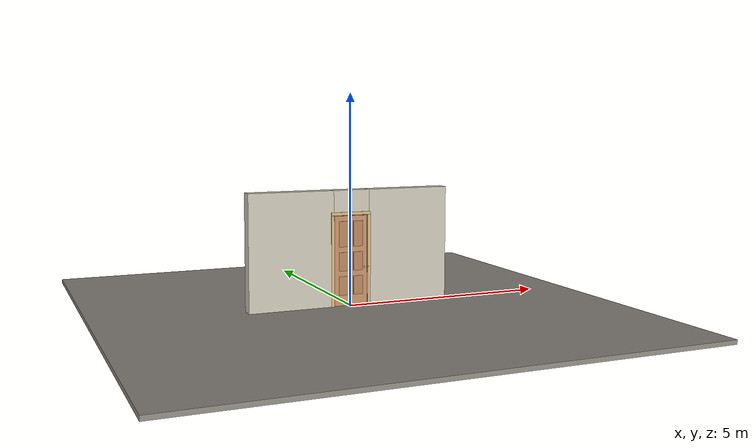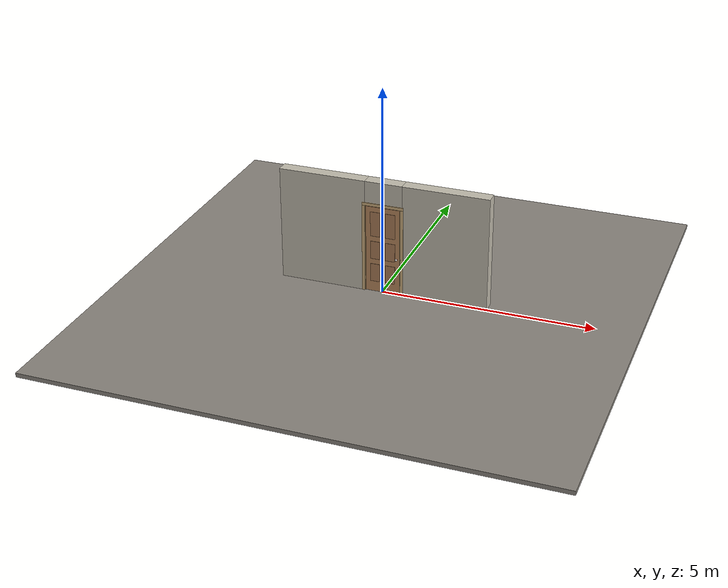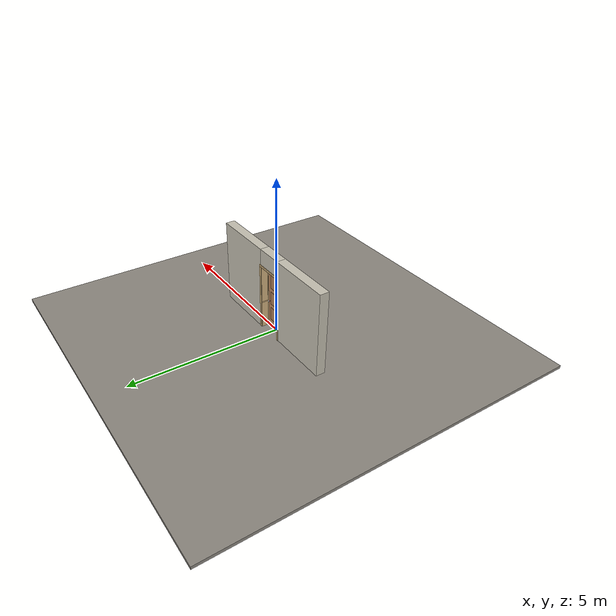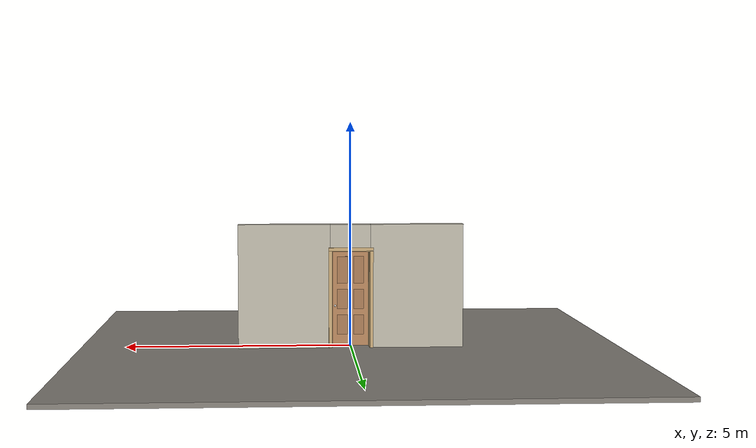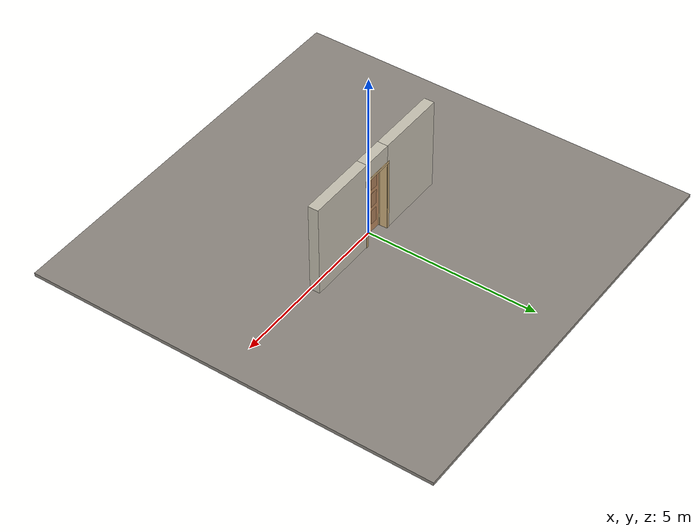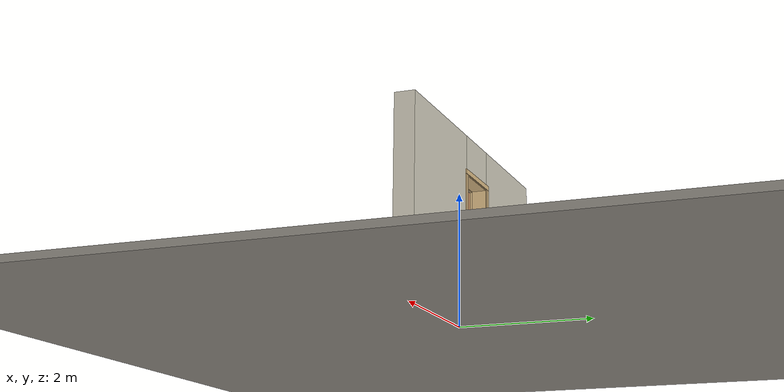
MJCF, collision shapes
<?xml version="1.0" ?>
<mujoco model="db0120_swing_single_full">
  <compiler angle="radian" meshdir="../../hardware" texturedir="../../textures" autolimits="true" inertiafromgeom="false"/>
  <option timestep="0.002" integrator="implicitfast" cone="elliptic" impratio="10" noslip_iterations="3">
    <flag multiccd="enable"/>
  </option>
  <size memory="16M"/>
  <default>
    <geom condim="4" solref="0.005 1" solimp="0.95 0.99 0.001"/>
    <joint solreflimit="0.005 1" solimplimit="0.95 0.99 0.001"/>
    <tendon solreflimit="0.005 1"/>
    <equality solref="0.002 1"/>
  </default>
  <visual>
    <headlight ambient="0.4 0.4 0.4" diffuse="0.7 0.7 0.7" specular="0.2 0.2 0.2"/>
    <quality shadowsize="4096"/>
    <map znear="0.01" zfar="60"/>
  </visual>
  <asset>
    <mesh name="hinge_2af0f4d6ca" file="hinge_2af0f4d6ca.obj"/>
    <mesh name="hinge_jamb_c0c0a62ada" file="hinge_jamb_c0c0a62ada.obj"/>
    <mesh name="knob_d6523d5571" file="knob_d6523d5571.obj"/>
    <material name="mat_floor" rgba="0.55 0.53 0.5 1" specular="0.2" shininess="0.15" reflectance="0"/>
    <material name="mat_wall" rgba="0.78 0.76 0.7 1" specular="0.2" shininess="0.1" reflectance="0"/>
    <material name="mat_leaf" rgba="0.75 0.55 0.38 1" specular="0.2" shininess="0.45" reflectance="0"/>
    <material name="mat_leaf_panel" rgba="0.69 0.506 0.35 1" specular="0.2" shininess="0.45" reflectance="0"/>
    <material name="mat_hinge" rgba="0.65 0.66 0.68 1" specular="0.74" shininess="0.5" reflectance="0.36"/>
    <material name="mat_op_pvc" rgba="0.92 0.92 0.9 1" specular="0.2" shininess="0.6" reflectance="0"/>
    <material name="mat_trim" rgba="0.85 0.66 0.3 1" specular="0.8" shininess="0.75" reflectance="0.4"/>
    <material name="mat_bolt" rgba="0.85 0.66 0.3 1" specular="0.8" shininess="0.75" reflectance="0.4"/>
    <material name="mat_frame" rgba="0.82 0.7 0.5 1" specular="0.2" shininess="0.45" reflectance="0"/>
    <material name="mat_seal" rgba="0.1 0.1 0.1 1" specular="0.2" shininess="0.1" reflectance="0"/>
    <texture name="skybox" type="skybox" builtin="gradient" rgb1="0.6 0.7 0.85" rgb2="0.9 0.92 0.95" width="256" height="256"/>
  </asset>
  <worldbody>
    <light name="sun" pos="1.5 -2.5 4" dir="-0.3 0.5 -0.8" directional="true" diffuse="0.8 0.8 0.8" specular="0.3 0.3 0.3" castshadow="true"/>
    <light name="fill" pos="-1.5 2.5 3" dir="0.3 -0.5 -0.7" directional="true" diffuse="0.35 0.35 0.4" castshadow="false"/>
    <camera name="robot_view" pos="0 -2.516812 1.812087" xyaxes="1 0 0 0 0.26963 0.962964" fovy="52"/>
    <camera name="far_view" pos="0 2.758812 1.812087" xyaxes="-1 0 0 0 -0.26963 0.962964" fovy="52"/>
    <camera name="iso" pos="2.004737 -2.094762 2.234138" xyaxes="0.741536 0.670913 0 -0.242917 0.268487 0.932151" fovy="46"/>
    <camera name="detail_handle" pos="0.5255 -0.8685 1.194" xyaxes="0.97561 0.219512 0 -0.070934 0.315262 0.94635" fovy="38"/>
    <geom name="floor" type="box" size="6 6 0.05" pos="0 0 -0.05" material="mat_floor" group="0" contype="1" conaffinity="1" friction="0.8 0.005 0.0001" density="2400"/>
    <geom name="wall_left" type="box" size="1.03525 0.15 1.3735" pos="-1.46475 0.121 1.3735" material="mat_wall" group="0" contype="1" conaffinity="1" friction="0.6 0.005 0.0001" density="800"/>
    <geom name="wall_right" type="box" size="1.02025 0.15 1.3735" pos="1.47975 0.121 1.3735" material="mat_wall" group="0" contype="1" conaffinity="1" friction="0.6 0.005 0.0001" density="800"/>
    <geom name="wall_header" type="box" size="0.4445 0.15 0.2755" pos="0.015 0.121 2.4715" material="mat_wall" group="0" contype="1" conaffinity="1" friction="0.6 0.005 0.0001" density="800"/>
    <geom name="hinge_0_jamb" type="mesh" mesh="hinge_jamb_c0c0a62ada" pos="-0.4075 -0.029 0.259" material="mat_hinge" group="1" contype="0" conaffinity="0" density="7850"/>
    <geom name="hinge_1_jamb" type="mesh" mesh="hinge_jamb_c0c0a62ada" pos="-0.4075 -0.029 1.076" material="mat_hinge" group="1" contype="0" conaffinity="0" density="7850"/>
    <geom name="hinge_2_jamb" type="mesh" mesh="hinge_jamb_c0c0a62ada" pos="-0.4075 -0.029 1.963" material="mat_hinge" group="1" contype="0" conaffinity="0" density="7850"/>
    <geom name="jamb_hinge" type="box" size="0.0095 0.15 1.0735" pos="-0.42 0.121 1.0735" material="mat_frame" group="0" contype="1" conaffinity="1" friction="0.6 0.005 0.0001" density="400"/>
    <geom name="strike_914_wall_n" type="box" size="0.0245 0.131575 0.0167" pos="0.435 0.139425 0.914" material="mat_frame" group="0" contype="1" conaffinity="1" friction="0.6 0.005 0.0001" density="400"/>
    <geom name="strike_914_wall_p" type="box" size="0.0245 0.008 0.0167" pos="0.435 -0.01585 0.914" material="mat_frame" group="0" contype="1" conaffinity="1" friction="0.6 0.005 0.0001" density="400"/>
    <geom name="strike_914_ramp" type="box" size="0.0245 0.01649 0.0167" pos="0.439636 -0.028673 0.914" quat="0.977148 0 0 0.212558" material="mat_frame" group="0" contype="1" conaffinity="1" friction="0.12 0.005 0.0001" density="400"/>
    <geom name="strike_914_back" type="box" size="0.01615 0.00785 0.0167" pos="0.44335 0 0.914" material="mat_frame" group="0" contype="1" conaffinity="1" friction="0.6 0.005 0.0001" density="400"/>
    <geom name="jamb_strike_0" type="box" size="0.0245 0.15 0.44865" pos="0.435 0.121 0.44865" material="mat_frame" group="0" contype="1" conaffinity="1" friction="0.6 0.005 0.0001" density="400"/>
    <geom name="jamb_strike_1" type="box" size="0.0245 0.15 0.60815" pos="0.435 0.121 1.53885" material="mat_frame" group="0" contype="1" conaffinity="1" friction="0.6 0.005 0.0001" density="400"/>
    <geom name="jamb_head" type="box" size="0.4445 0.15 0.0095" pos="0.015 0.121 2.1565" material="mat_frame" group="0" contype="1" conaffinity="1" friction="0.6 0.005 0.0001" density="400"/>
    <geom name="head_stud" type="box" size="0.4445 0.15 0.015" pos="0.015 0.121 2.181" material="mat_wall" group="0" contype="1" conaffinity="1" friction="0.6 0.005 0.0001" density="500"/>
    <geom name="stop_hinge" type="box" size="0.0055 0.016 1.0735" pos="-0.405 0.0385 1.0735" material="mat_frame" group="0" contype="1" conaffinity="1" friction="0.6 0.005 0.0001" density="400"/>
    <geom name="stop_strike" type="box" size="0.0055 0.016 1.0735" pos="0.405 0.0385 1.0735" material="mat_frame" group="0" contype="1" conaffinity="1" friction="0.6 0.005 0.0001" density="400"/>
    <geom name="stop_head" type="box" size="0.4105 0.016 0.0055" pos="0 0.0385 2.1415" material="mat_frame" group="0" contype="1" conaffinity="1" friction="0.6 0.005 0.0001" density="400"/>
    <geom name="seal_hinge" type="box" size="0.004 0.0015 1.0735" pos="-0.4075 0.0235 1.0735" material="mat_seal" group="1" contype="0" conaffinity="0" density="1100"/>
    <geom name="seal_strike" type="box" size="0.004 0.0015 1.0735" pos="0.4075 0.0235 1.0735" material="mat_seal" group="1" contype="0" conaffinity="0" density="1100"/>
    <geom name="seal_head" type="box" size="0.3905 0.0015 0.008" pos="0 0.0235 2.135" material="mat_seal" group="1" contype="0" conaffinity="0" density="1100"/>
    <geom name="casing_l_n" type="box" size="0.035 0.008 1.083" pos="-0.4595 -0.037 1.0735" material="mat_frame" group="2" contype="0" conaffinity="0" density="400"/>
    <geom name="casing_r_n" type="box" size="0.035 0.008 1.083" pos="0.4595 -0.037 1.0735" material="mat_frame" group="2" contype="0" conaffinity="0" density="400"/>
    <geom name="casing_h_n" type="box" size="0.4945 0.008 0.035" pos="0 -0.037 2.196" material="mat_frame" group="2" contype="0" conaffinity="0" density="400"/>
    <geom name="casing_l_p" type="box" size="0.035 0.008 1.083" pos="-0.4595 0.279 1.0735" material="mat_frame" group="2" contype="0" conaffinity="0" density="400"/>
    <geom name="casing_r_p" type="box" size="0.035 0.008 1.083" pos="0.4595 0.279 1.0735" material="mat_frame" group="2" contype="0" conaffinity="0" density="400"/>
    <geom name="casing_h_p" type="box" size="0.4945 0.008 0.035" pos="0 0.279 2.196" material="mat_frame" group="2" contype="0" conaffinity="0" density="400"/>
    <site name="approach_point" pos="0 -1.5 0" quat="1 0 0 0" size="0.05" rgba="0.2 0.9 0.2 0.5" group="4"/>
    <site name="goal_point" pos="0 1.5 0" quat="1 0 0 0" size="0.05" rgba="0.2 0.9 0.2 0.5" group="4"/>
    <site name="door_plane_center" pos="0 0 1.0735" quat="1 0 0 0" size="0.02" rgba="0.2 0.9 0.2 0.5" group="4"/>
    <body name="leaf" pos="-0.4105 0 0">
      <inertial pos="0.404861 -0.000182 1.076235" mass="38.932098" quat="-0.49978 0.500424 -0.49957 -0.500225" diaginertia="2.201907077 14.823950848 17.012997905"/>
      <joint name="leaf_hinge" type="hinge" axis="0 0 -1" pos="0.003 -0.029 0" limited="true" range="0 2.094395" solreflimit="0.02 1" damping="0.218374" frictionloss="1.498381" armature="0.02"/>
      <geom name="leaf_slab" type="box" size="0.4065 0.022 1.067" pos="0.4095 0 1.076" material="mat_leaf" group="0" contype="1" conaffinity="1" friction="0.35 0.005 0.0001" density="1"/>
      <geom name="leaf_panel_0_n" type="box" size="0.11575 0.003 0.221884" pos="0.22875 -0.025 0.485624" material="mat_leaf_panel" group="1" contype="0" conaffinity="0" density="1"/>
      <geom name="leaf_panel_0_p" type="box" size="0.11575 0.003 0.221884" pos="0.22875 0.025 0.485624" material="mat_leaf_panel" group="1" contype="0" conaffinity="0" density="1"/>
      <geom name="leaf_panel_1_n" type="box" size="0.11575 0.003 0.221884" pos="0.59025 -0.025 0.485624" material="mat_leaf_panel" group="1" contype="0" conaffinity="0" density="1"/>
      <geom name="leaf_panel_1_p" type="box" size="0.11575 0.003 0.221884" pos="0.59025 0.025 0.485624" material="mat_leaf_panel" group="1" contype="0" conaffinity="0" density="1"/>
      <geom name="leaf_panel_2_n" type="box" size="0.11575 0.003 0.221884" pos="0.22875 -0.025 1.059392" material="mat_leaf_panel" group="1" contype="0" conaffinity="0" density="1"/>
      <geom name="leaf_panel_2_p" type="box" size="0.11575 0.003 0.221884" pos="0.22875 0.025 1.059392" material="mat_leaf_panel" group="1" contype="0" conaffinity="0" density="1"/>
      <geom name="leaf_panel_3_n" type="box" size="0.11575 0.003 0.221884" pos="0.59025 -0.025 1.059392" material="mat_leaf_panel" group="1" contype="0" conaffinity="0" density="1"/>
      <geom name="leaf_panel_3_p" type="box" size="0.11575 0.003 0.221884" pos="0.59025 0.025 1.059392" material="mat_leaf_panel" group="1" contype="0" conaffinity="0" density="1"/>
      <geom name="leaf_panel_4_n" type="box" size="0.11575 0.003 0.302512" pos="0.22875 -0.025 1.713788" material="mat_leaf_panel" group="1" contype="0" conaffinity="0" density="1"/>
      <geom name="leaf_panel_4_p" type="box" size="0.11575 0.003 0.302512" pos="0.22875 0.025 1.713788" material="mat_leaf_panel" group="1" contype="0" conaffinity="0" density="1"/>
      <geom name="leaf_panel_5_n" type="box" size="0.11575 0.003 0.302512" pos="0.59025 -0.025 1.713788" material="mat_leaf_panel" group="1" contype="0" conaffinity="0" density="1"/>
      <geom name="leaf_panel_5_p" type="box" size="0.11575 0.003 0.302512" pos="0.59025 0.025 1.713788" material="mat_leaf_panel" group="1" contype="0" conaffinity="0" density="1"/>
      <geom name="hinge_0" type="mesh" mesh="hinge_2af0f4d6ca" pos="0.003 -0.029 0.259" material="mat_hinge" group="1" contype="0" conaffinity="0" density="7850"/>
      <geom name="hinge_1" type="mesh" mesh="hinge_2af0f4d6ca" pos="0.003 -0.029 1.076" material="mat_hinge" group="1" contype="0" conaffinity="0" density="7850"/>
      <geom name="hinge_2" type="mesh" mesh="hinge_2af0f4d6ca" pos="0.003 -0.029 1.963" material="mat_hinge" group="1" contype="0" conaffinity="0" density="7850"/>
      <geom name="leaf_latch_bolt_faceplate" type="box" size="0.0006 0.01235 0.0267" pos="0.8154 0 0.914" material="mat_bolt" group="1" contype="0" conaffinity="0" density="8500"/>
      <site name="leaf_edge_mid" pos="0.816 0 1.067" quat="1 0 0 0" size="0.02" rgba="0.2 0.9 0.2 0.5" group="4"/>
      <body name="leaf_handle" pos="0.756 0 0.914">
        <inertial pos="0 0 0" mass="3.583139" quat="0.5 0.5 0.5 0.5" diaginertia="0.00357977 0.014614965 0.014614965"/>
        <joint name="leaf_handle_hinge" type="hinge" axis="0 -1 0" limited="true" range="0 0.87" damping="0.164802" frictionloss="0.039" stiffness="0.5" springref="-0.5" armature="0.01"/>
        <geom name="leaf_handle_spindle" type="cylinder" size="0.006 0.03" pos="0 0 0" quat="0.707107 -0.707107 0 0" material="mat_op_pvc" group="1" contype="0" conaffinity="0" density="7850"/>
        <geom name="leaf_handle_knob_n" type="mesh" mesh="knob_d6523d5571" pos="0 -0.022 0" quat="0.707107 0.707107 0 0" material="mat_op_pvc" group="1" contype="0" conaffinity="0" density="3000"/>
        <geom name="leaf_handle_knob_col_n" type="sphere" size="0.0243" pos="0 -0.0685 0" material="mat_op_pvc" group="0" contype="1" conaffinity="1" friction="0.15 0.01 0.0001" density="3000"/>
        <geom name="leaf_handle_knob_neck_n" type="cylinder" size="0.011 0.012" pos="0 -0.034 0" quat="0.707107 -0.707107 0 0" material="mat_op_pvc" group="3" contype="1" conaffinity="1" rgba="0.8 0.3 0.3 0.25" friction="0.6 0.005 0.0001" density="3000"/>
        <geom name="leaf_handle_knob_p" type="mesh" mesh="knob_d6523d5571" pos="0 0.022 0" quat="-0.707107 0.707107 0 0" material="mat_op_pvc" group="1" contype="0" conaffinity="0" density="3000"/>
        <geom name="leaf_handle_knob_col_p" type="sphere" size="0.0243" pos="0 0.0685 0" material="mat_op_pvc" group="0" contype="1" conaffinity="1" friction="0.15 0.01 0.0001" density="3000"/>
        <geom name="leaf_handle_knob_neck_p" type="cylinder" size="0.011 0.012" pos="0 0.034 0" quat="0.707107 -0.707107 0 0" material="mat_op_pvc" group="3" contype="1" conaffinity="1" rgba="0.8 0.3 0.3 0.25" friction="0.6 0.005 0.0001" density="3000"/>
        <site name="leaf_handle_grip_n" pos="0 -0.0685 0" quat="1 0 0 0" size="0.012" rgba="0.2 0.9 0.2 0.5" group="4"/>
        <site name="leaf_handle_grip_p" pos="0 0.0685 0" quat="1 0 0 0" size="0.012" rgba="0.2 0.9 0.2 0.5" group="4"/>
      </body>
      <body name="leaf_latch_bolt" pos="0.816 0 0.914">
        <inertial pos="-0.00865 0 0" mass="0.041419" quat="0.92388 -0.382683 0 0" diaginertia="0.000000798 0.000005598 0.000005598"/>
        <joint name="leaf_latch_bolt_slide" type="slide" axis="-1 0 0" limited="true" range="0 0.0127" damping="2" frictionloss="0.3" stiffness="300" springref="-0.008333" armature="0.1"/>
        <geom name="leaf_latch_bolt_capsule" type="capsule" size="0.00635 0.015" pos="-0.00865 0 0" quat="0.707107 0 0.707107 0" material="mat_bolt" group="0" contype="1" conaffinity="1" friction="0.2 0.005 0.0001" density="8500"/>
      </body>
    </body>
  </worldbody>
  <tendon>
    <fixed name="leaf_latch_bolt_coupling" limited="true" range="0 10">
      <joint joint="leaf_latch_bolt_slide" coef="1"/>
      <joint joint="leaf_handle_hinge" coef="-0.015679"/>
    </fixed>
  </tendon>
  <sensor>
    <jointpos name="leaf_hinge_pos" joint="leaf_hinge"/>
    <jointvel name="leaf_hinge_vel" joint="leaf_hinge"/>
    <jointpos name="leaf_handle_hinge_pos" joint="leaf_handle_hinge"/>
    <jointvel name="leaf_handle_hinge_vel" joint="leaf_handle_hinge"/>
    <jointpos name="leaf_latch_bolt_slide_pos" joint="leaf_latch_bolt_slide"/>
    <jointvel name="leaf_latch_bolt_slide_vel" joint="leaf_latch_bolt_slide"/>
  </sensor>
</mujoco>
